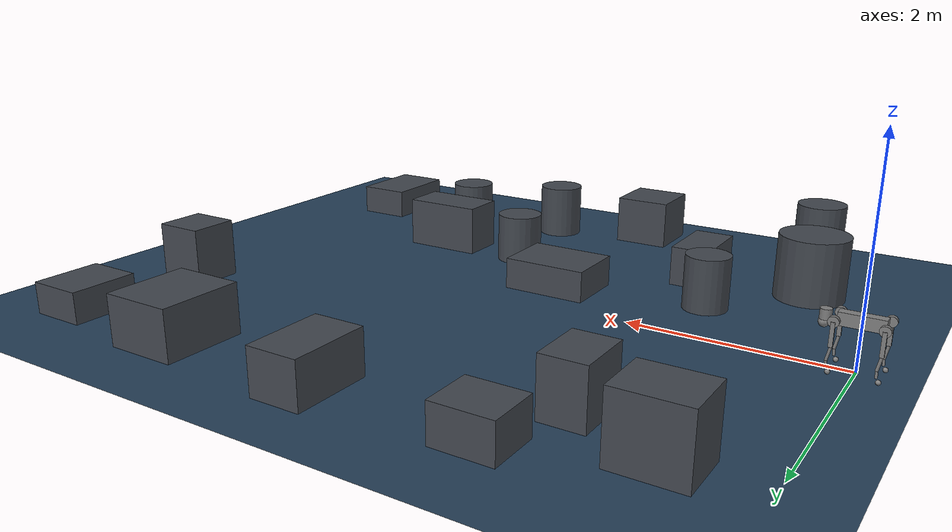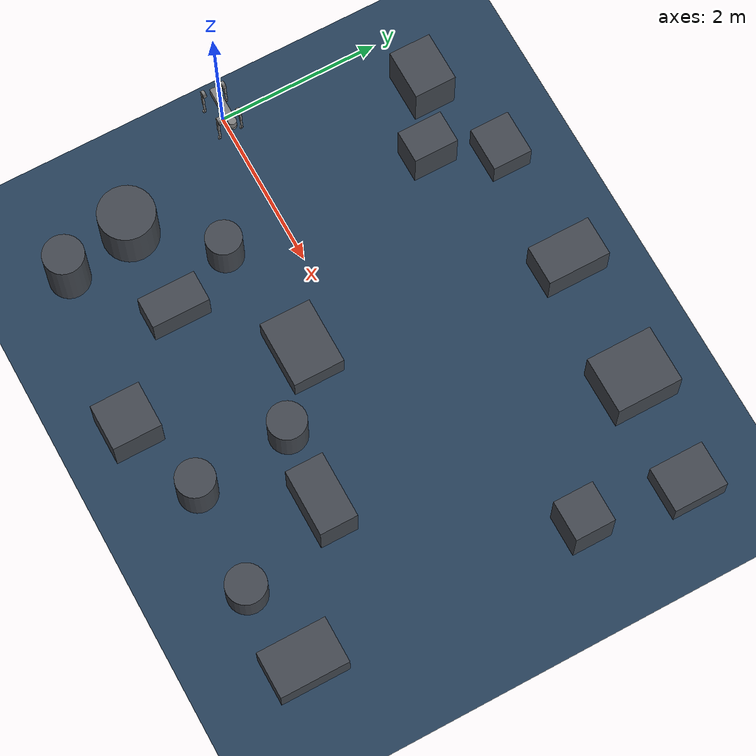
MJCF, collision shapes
<?xml version="1.0" encoding="utf-8"?>
<mujoco model="go2 random_scene_03">
  <include file="go2.xml" />
  <statistic center="3.5 0 0.1" extent="8" />
  <visual>
    <headlight diffuse="0.6 0.6 0.6" ambient="0.3 0.3 0.3" specular="0 0 0" />
    <rgba haze="0.15 0.25 0.35 1" />
    <global azimuth="135" elevation="-40" />
  </visual>
  <asset>
    <texture type="skybox" builtin="gradient" rgb1="0.3 0.5 0.7" rgb2="0 0 0" width="512" height="3072" />
    <texture type="2d" name="random_groundplane" builtin="checker" mark="edge" rgb1="0.2 0.3 0.4" rgb2="0.1 0.2 0.3" markrgb="0.8 0.8 0.8" width="300" height="300" />
    <material name="random_groundplane" texture="random_groundplane" texuniform="true" texrepeat="5 5" reflectance="0.2" />
  </asset>
  <worldbody>
    <light pos="1 0 7" dir="0 0 -1" directional="true" />
    <geom name="floor" type="plane" pos="3.5 0 0" size="4 3.5 0.05" material="random_groundplane" />
    <geom name="ppt_obstacle_01" type="box" pos="4.7186038703247819 -1.2157635495809029 0.25638644557828322" size="0.40873662826793972 0.23099564888182261 0.25638644557828322" rgba="0.26 0.28 0.31 1" />
    <geom name="ppt_obstacle_02" type="box" pos="6.2754648516211002 1.1821176680473919 0.28877446081782515" size="0.24883750824666245 0.24475937644868029 0.28877446081782515" rgba="0.26 0.28 0.31 1" />
    <geom name="ppt_obstacle_03" type="box" pos="5.1040314377954088 2.5119312986771116 0.24365549630491867" size="0.35117017038091336 0.40361823058352003 0.24365549630491867" rgba="0.26 0.28 0.31 1" />
    <geom name="ppt_obstacle_04" type="box" pos="2.9977654780264311 -0.54554181434878268 0.15458320148630927" size="0.41506187430685926 0.3138229826683262 0.15458320148630927" rgba="0.26 0.28 0.31 1" />
    <geom name="ppt_obstacle_05" type="box" pos="0.75929794749283941 2.2299887299506493 0.30270613605001651" size="0.3136932467333462 0.25900713886341709 0.30270613605001651" rgba="0.26 0.28 0.31 1" />
    <geom name="ppt_obstacle_06" type="box" pos="1.882610362636862 -1.5822795751802714 0.19810552471266718" size="0.19391674470340975 0.35592850510246199 0.19810552471266718" rgba="0.26 0.28 0.31 1" />
    <geom name="ppt_obstacle_07" type="box" pos="6.1876183359999617 -2.2302624658981829 0.16057043175227501" size="0.28328355333753824 0.419796125732182 0.16057043175227501" rgba="0.26 0.28 0.31 1" />
    <geom name="ppt_obstacle_08" type="cylinder" pos="5.199238404222573 -2.3991791916722209 0.20765500105310353" size="0.23853929015003311 0.20765500105310353" rgba="0.26 0.28 0.31 1" />
    <geom name="ppt_obstacle_09" type="box" pos="6.4211522926890394 2.4440643603627348 0.15520415204891633" size="0.27871927470160962 0.33150159831449288 0.15520415204891633" rgba="0.26 0.28 0.31 1" />
    <geom name="ppt_obstacle_10" type="box" pos="2.8971536419856507 -2.6796711142064464 0.25117223020621543" size="0.28581946111819212 0.29881054239077548 0.25117223020621543" rgba="0.26 0.28 0.31 1" />
    <geom name="ppt_obstacle_11" type="box" pos="3.5068843785487389 2.6014151394566754 0.217952895489712" size="0.24753860502029057 0.38932360118698384 0.217952895489712" rgba="0.26 0.28 0.31 1" />
    <geom name="ppt_obstacle_12" type="cylinder" pos="0.9424691695746128 -2.4553628598986688 0.36557709222094276" size="0.24477434486246155 0.36557709222094276" rgba="0.26 0.28 0.31 1" />
    <geom name="ppt_obstacle_13" type="cylinder" pos="3.9180064539824135 -2.3448431006313437 0.2802827222363824" size="0.23274565720115048 0.2802827222363824" rgba="0.26 0.28 0.31 1" />
    <geom name="ppt_obstacle_14" type="cylinder" pos="3.7945991628880904 -1.1499347686265715 0.25242160189083551" size="0.23088313631971363 0.25242160189083551" rgba="0.26 0.28 0.31 1" />
    <geom name="ppt_obstacle_15" type="box" pos="1.9212634736641006 2.6230589951450134 0.17618212921275622" size="0.27901844020107164 0.24485012522792157 0.17618212921275622" rgba="0.26 0.28 0.31 1" />
    <geom name="ppt_obstacle_16" type="cylinder" pos="0.78709468474664035 -1.6000779841072328 0.31932347774781267" size="0.3393790402051089 0.31932347774781267" rgba="0.26 0.28 0.31 1" />
    <geom name="ppt_obstacle_17" type="cylinder" pos="1.5368525277272391 -0.76108640562378516 0.26698049692671433" size="0.21670324477666036 0.26698049692671433" rgba="0.26 0.28 0.31 1" />
    <geom name="ppt_obstacle_18" type="box" pos="1.5494254370466092 1.8639642017743907 0.26950297975201865" size="0.20556225419175184 0.27586899555181849 0.26950297975201865" rgba="0.26 0.28 0.31 1" />
  </worldbody>
</mujoco>

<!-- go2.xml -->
<mujoco model="go2">
  <compiler angle="radian" meshdir="assets" autolimits="true" />

  <option cone="elliptic" impratio="100" />

  <default>
    <default class="go2">
      <geom friction="0.4" margin="0.001" condim="1"/>
      <joint axis="0 1 0" damping="0.1" armature="0.01" frictionloss="0.2"/>
      <motor ctrlrange="-23.7 23.7"/>
      <default class="abduction">
        <joint axis="1 0 0" range="-1.0472 1.0472"/>
      </default>
      <default class="hip">
        <default class="front_hip">
          <joint range="-1.5708 3.4907"/>
        </default>
        <default class="back_hip">
          <joint range="-0.5236 4.5379"/>
        </default>
      </default>
      <default class="knee">
        <joint range="-2.7227 -0.83776"/>
        <motor ctrlrange="-45.43 45.43"/>
      </default>
      <default class="visual">
        <geom type="mesh" contype="0" conaffinity="0" group="2"/>
      </default>
      <default class="collision">
        <geom group="3"/>
        <default class="foot">
          <geom size="0.022" pos="-0.002 0 -0.213" priority="1" condim="6"
            friction="0.4 0.02 0.01"/>
        </default>
      </default>
    </default>
  </default>

  <asset>
    <material name="metal" rgba=".9 .95 .95 1" />
    <material name="black" rgba="0 0 0 1" />
    <material name="white" rgba="1 1 1 1" />
    <material name="gray" rgba="0.671705 0.692426 0.774270 1" />
    <material name="transparent" rgba="1 1 1 0.01" />

    <mesh file="base_0.obj" />
    <mesh file="base_1.obj" />
    <mesh file="base_2.obj" />
    <mesh file="base_3.obj" />
    <mesh file="base_4.obj" />
    <mesh file="hip_0.obj" />
    <mesh file="hip_1.obj" />
    <mesh file="thigh_0.obj" />
    <mesh file="thigh_1.obj" />
    <mesh file="thigh_mirror_0.obj" />
    <mesh file="thigh_mirror_1.obj" />
    <mesh file="calf_0.obj" />
    <mesh file="calf_1.obj" />
    <mesh file="calf_mirror_0.obj" />
    <mesh file="calf_mirror_1.obj" />
    <mesh file="foot.obj" />
  </asset>

  <worldbody>
    <body name="base_link" pos="0 0 0.445" childclass="go2">
      <inertial pos="0.021112 0 -0.005366" quat="-0.000543471 0.713435 -0.00173769 0.700719"
        mass="6.921"
        diaginertia="0.107027 0.0980771 0.0244531" />
      <freejoint />
      <geom mesh="base_0" material="black" class="visual" />
      <geom mesh="base_1" material="black" class="visual" />
      <geom mesh="base_2" material="black" class="visual" />
      <geom mesh="base_3" material="white" class="visual" />
      <geom mesh="base_4" material="gray" class="visual" />
      <geom size="0.1881 0.04675 0.057" type="box" class="collision" />
      <geom size="0.05 0.045" pos="0.285 0 0.01" type="cylinder" class="collision" />
      <geom size="0.047" pos="0.293 0 -0.06" class="collision" />
      <site name="imu" pos="-0.02557 0 0.04232" />
      <body name="FL_hip" pos="0.1934 0.0465 0">
        <inertial pos="-0.0054 0.00194 -0.000105" quat="0.497014 0.499245 0.505462 0.498237"
          mass="0.678"
          diaginertia="0.00088403 0.000596003 0.000479967" />
        <joint name="FL_hip_joint" class="abduction" />
        <geom mesh="hip_0" material="metal" class="visual" />
        <geom mesh="hip_1" material="gray" class="visual" />
        <geom size="0.046 0.02" pos="0 0.08 0" quat="1 1 0 0" type="cylinder" class="collision" />
        <body name="FL_thigh" pos="0 0.0955 0">
          <inertial pos="-0.00374 -0.0223 -0.0327" quat="0.829533 0.0847635 -0.0200632 0.551623"
            mass="1.152"
            diaginertia="0.00594973 0.00584149 0.000878787" />
          <joint name="FL_thigh_joint" class="front_hip" />
          <geom mesh="thigh_0" material="metal" class="visual" />
          <geom mesh="thigh_1" material="gray" class="visual" />
          <geom size="0.1065 0.01225 0.017" pos="0 0 -0.1065" quat="0.707107 0 0.707107 0"
            type="box" class="collision" />
          <body name="FL_calf" pos="0 0 -0.213">
            <inertial pos="0.00629595 -0.000622121 -0.141417"
              quat="0.710672 0.00154099 -0.00450087 0.703508"
              mass="0.241352" diaginertia="0.0014901 0.00146356 5.31397e-05" />
            <joint name="FL_calf_joint" class="knee" />
            <geom mesh="calf_0" material="gray" class="visual" />
            <geom mesh="calf_1" material="black" class="visual" />
            <geom size="0.012 0.06" pos="0.008 0 -0.06" quat="0.994493 0 -0.104807 0"
              type="cylinder" class="collision" />
            <geom size="0.011 0.0325" pos="0.02 0 -0.148" quat="0.999688 0 0.0249974 0"
              type="cylinder" class="collision" />
            <geom pos="0 0 -0.213" mesh="foot" class="visual" material="black" />
            <geom name="FL" class="foot" />
            <site name="FL_touch" pos="0 0 -0.213" size="0.027" material="transparent"/>
            <body name="FL_foot" pos="0 0 -0.213"/>
          </body>
        </body>
      </body>
      <body name="FR_hip" pos="0.1934 -0.0465 0">
        <inertial pos="-0.0054 -0.00194 -0.000105" quat="0.498237 0.505462 0.499245 0.497014"
          mass="0.678"
          diaginertia="0.00088403 0.000596003 0.000479967" />
        <joint name="FR_hip_joint" class="abduction" />
        <geom mesh="hip_0" material="metal" class="visual" quat="4.63268e-05 1 0 0" />
        <geom mesh="hip_1" material="gray" class="visual" quat="4.63268e-05 1 0 0" />
        <geom size="0.046 0.02" pos="0 -0.08 0" quat="0.707107 0.707107 0 0" type="cylinder"
          class="collision" />
        <body name="FR_thigh" pos="0 -0.0955 0">
          <inertial pos="-0.00374 0.0223 -0.0327" quat="0.551623 -0.0200632 0.0847635 0.829533"
            mass="1.152"
            diaginertia="0.00594973 0.00584149 0.000878787" />
          <joint name="FR_thigh_joint" class="front_hip" />
          <geom mesh="thigh_mirror_0" material="metal" class="visual" />
          <geom mesh="thigh_mirror_1" material="gray" class="visual" />
          <geom size="0.1065 0.01225 0.017" pos="0 0 -0.1065" quat="0.707107 0 0.707107 0"
            type="box" class="collision" />
          <body name="FR_calf" pos="0 0 -0.213">
            <inertial pos="0.00629595 0.000622121 -0.141417"
              quat="0.703508 -0.00450087 0.00154099 0.710672"
              mass="0.241352" diaginertia="0.0014901 0.00146356 5.31397e-05" />
            <joint name="FR_calf_joint" class="knee" />
            <geom mesh="calf_mirror_0" material="gray" class="visual" />
            <geom mesh="calf_mirror_1" material="black" class="visual" />
            <geom size="0.013 0.06" pos="0.01 0 -0.06" quat="0.995004 0 -0.0998334 0"
              type="cylinder" class="collision" />
            <geom size="0.011 0.0325" pos="0.02 0 -0.148" quat="0.999688 0 0.0249974 0"
              type="cylinder" class="collision" />
            <geom pos="0 0 -0.213" mesh="foot" class="visual" material="black" />
            <geom name="FR" class="foot" />
            <site name="FR_touch" pos="0 0 -0.213" size="0.027" material="transparent"/>
            <body name="FR_foot" pos="0 0 -0.213"/>
          </body>
        </body>
      </body>
      <body name="RL_hip" pos="-0.1934 0.0465 0">
        <inertial pos="0.0054 0.00194 -0.000105" quat="0.505462 0.498237 0.497014 0.499245"
          mass="0.678"
          diaginertia="0.00088403 0.000596003 0.000479967" />
        <joint name="RL_hip_joint" class="abduction" />
        <geom mesh="hip_0" material="metal" class="visual" quat="4.63268e-05 0 1 0" />
        <geom mesh="hip_1" material="gray" class="visual" quat="4.63268e-05 0 1 0" />
        <geom size="0.046 0.02" pos="0 0.08 0" quat="0.707107 0.707107 0 0" type="cylinder"
          class="collision" />
        <body name="RL_thigh" pos="0 0.0955 0">
          <inertial pos="-0.00374 -0.0223 -0.0327" quat="0.829533 0.0847635 -0.0200632 0.551623"
            mass="1.152"
            diaginertia="0.00594973 0.00584149 0.000878787" />
          <joint name="RL_thigh_joint" class="back_hip" />
          <geom mesh="thigh_0" material="metal" class="visual" />
          <geom mesh="thigh_1" material="gray" class="visual" />
          <geom size="0.1065 0.01225 0.017" pos="0 0 -0.1065" quat="0.707107 0 0.707107 0"
            type="box" class="collision" />
          <body name="RL_calf" pos="0 0 -0.213">
            <inertial pos="0.00629595 -0.000622121 -0.141417"
              quat="0.710672 0.00154099 -0.00450087 0.703508"
              mass="0.241352" diaginertia="0.0014901 0.00146356 5.31397e-05" />
            <joint name="RL_calf_joint" class="knee" />
            <geom mesh="calf_0" material="gray" class="visual" />
            <geom mesh="calf_1" material="black" class="visual" />
            <geom size="0.013 0.06" pos="0.01 0 -0.06" quat="0.995004 0 -0.0998334 0"
              type="cylinder" class="collision" />
            <geom size="0.011 0.0325" pos="0.02 0 -0.148" quat="0.999688 0 0.0249974 0"
              type="cylinder" class="collision" />
            <geom pos="0 0 -0.213" mesh="foot" class="visual" material="black" />
            <geom name="RL" class="foot" />
            <site name="RL_touch" pos="0 0 -0.213" size="0.027" material="transparent"/>
            <body name="RL_foot" pos="0 0 -0.213" />
          </body>
        </body>
      </body>
      <body name="RR_hip" pos="-0.1934 -0.0465 0">
        <inertial pos="0.0054 -0.00194 -0.000105" quat="0.499245 0.497014 0.498237 0.505462"
          mass="0.678"
          diaginertia="0.00088403 0.000596003 0.000479967" />
        <joint name="RR_hip_joint" class="abduction" />
        <geom mesh="hip_0" material="metal" class="visual"
          quat="2.14617e-09 4.63268e-05 4.63268e-05 -1" />
        <geom mesh="hip_1" material="gray" class="visual"
          quat="2.14617e-09 4.63268e-05 4.63268e-05 -1" />
        <geom size="0.046 0.02" pos="0 -0.08 0" quat="0.707107 0.707107 0 0" type="cylinder"
          class="collision" />
        <body name="RR_thigh" pos="0 -0.0955 0">
          <inertial pos="-0.00374 0.0223 -0.0327" quat="0.551623 -0.0200632 0.0847635 0.829533"
            mass="1.152"
            diaginertia="0.00594973 0.00584149 0.000878787" />
          <joint name="RR_thigh_joint" class="back_hip" />
          <geom mesh="thigh_mirror_0" material="metal" class="visual" />
          <geom mesh="thigh_mirror_1" material="gray" class="visual" />
          <geom size="0.1065 0.01225 0.017" pos="0 0 -0.1065" quat="0.707107 0 0.707107 0"
            type="box" class="collision" />
          <body name="RR_calf" pos="0 0 -0.213">
            <inertial pos="0.00629595 0.000622121 -0.141417"
              quat="0.703508 -0.00450087 0.00154099 0.710672"
              mass="0.241352" diaginertia="0.0014901 0.00146356 5.31397e-05" />
            <joint name="RR_calf_joint" class="knee" />
            <geom mesh="calf_mirror_0" material="gray" class="visual" />
            <geom mesh="calf_mirror_1" material="black" class="visual" />
            <geom size="0.013 0.06" pos="0.01 0 -0.06" quat="0.995004 0 -0.0998334 0"
              type="cylinder" class="collision" />
            <geom size="0.011 0.0325" pos="0.02 0 -0.148" quat="0.999688 0 0.0249974 0"
              type="cylinder" class="collision" />
            <geom pos="0 0 -0.213" mesh="foot" class="visual" material="black" />
            <geom name="RR" class="foot" />
            <site name="RR_touch" pos="0 0 -0.213" size="0.027" material="transparent"/>
            <body name="RR_foot" pos="0 0 -0.213"/>
          </body>
        </body>
      </body>
    </body>
  </worldbody>

  <actuator>
    <motor class="abduction" name="FR_hip" joint="FR_hip_joint" />
    <motor class="hip" name="FR_thigh" joint="FR_thigh_joint" />
    <motor class="knee" name="FR_calf" joint="FR_calf_joint" />
    <motor class="abduction" name="FL_hip" joint="FL_hip_joint" />
    <motor class="hip" name="FL_thigh" joint="FL_thigh_joint" />
    <motor class="knee" name="FL_calf" joint="FL_calf_joint" />
    <motor class="abduction" name="RR_hip" joint="RR_hip_joint" />
    <motor class="hip" name="RR_thigh" joint="RR_thigh_joint" />
    <motor class="knee" name="RR_calf" joint="RR_calf_joint" />
    <motor class="abduction" name="RL_hip" joint="RL_hip_joint" />
    <motor class="hip" name="RL_thigh" joint="RL_thigh_joint" />
    <motor class="knee" name="RL_calf" joint="RL_calf_joint" />
  </actuator>

  <sensor>
    <jointpos name="FR_hip_pos" joint="FR_hip_joint" />
    <jointpos name="FR_thigh_pos" joint="FR_thigh_joint" />
    <jointpos name="FR_calf_pos" joint="FR_calf_joint" />
    <jointpos name="FL_hip_pos" joint="FL_hip_joint" />
    <jointpos name="FL_thigh_pos" joint="FL_thigh_joint" />
    <jointpos name="FL_calf_pos" joint="FL_calf_joint" />
    <jointpos name="RR_hip_pos" joint="RR_hip_joint" />
    <jointpos name="RR_thigh_pos" joint="RR_thigh_joint" />
    <jointpos name="RR_calf_pos" joint="RR_calf_joint" />
    <jointpos name="RL_hip_pos" joint="RL_hip_joint" />
    <jointpos name="RL_thigh_pos" joint="RL_thigh_joint" />
    <jointpos name="RL_calf_pos" joint="RL_calf_joint" />

    <jointvel name="FR_hip_vel" joint="FR_hip_joint" />
    <jointvel name="FR_thigh_vel" joint="FR_thigh_joint" />
    <jointvel name="FR_calf_vel" joint="FR_calf_joint" />
    <jointvel name="FL_hip_vel" joint="FL_hip_joint" />
    <jointvel name="FL_thigh_vel" joint="FL_thigh_joint" />
    <jointvel name="FL_calf_vel" joint="FL_calf_joint" />
    <jointvel name="RR_hip_vel" joint="RR_hip_joint" />
    <jointvel name="RR_thigh_vel" joint="RR_thigh_joint" />
    <jointvel name="RR_calf_vel" joint="RR_calf_joint" />
    <jointvel name="RL_hip_vel" joint="RL_hip_joint" />
    <jointvel name="RL_thigh_vel" joint="RL_thigh_joint" />
    <jointvel name="RL_calf_vel" joint="RL_calf_joint" />

    <jointactuatorfrc name="FR_hip_torque" joint="FR_hip_joint" noise="0.01" />
    <jointactuatorfrc name="FR_thigh_torque" joint="FR_thigh_joint" noise="0.01" />
    <jointactuatorfrc name="FR_calf_torque" joint="FR_calf_joint" noise="0.01" />
    <jointactuatorfrc name="FL_hip_torque" joint="FL_hip_joint" noise="0.01" />
    <jointactuatorfrc name="FL_thigh_torque" joint="FL_thigh_joint" noise="0.01" />
    <jointactuatorfrc name="FL_calf_torque" joint="FL_calf_joint" noise="0.01" />
    <jointactuatorfrc name="RR_hip_torque" joint="RR_hip_joint" noise="0.01" />
    <jointactuatorfrc name="RR_thigh_torque" joint="RR_thigh_joint" noise="0.01" />
    <jointactuatorfrc name="RR_calf_torque" joint="RR_calf_joint" noise="0.01" />
    <jointactuatorfrc name="RL_hip_torque" joint="RL_hip_joint" noise="0.01" />
    <jointactuatorfrc name="RL_thigh_torque" joint="RL_thigh_joint" noise="0.01" />
    <jointactuatorfrc name="RL_calf_torque" joint="RL_calf_joint" noise="0.01" />

    <framequat name="imu_quat" objtype="site" objname="imu" />
    <gyro name="imu_gyro" site="imu" />
    <accelerometer name="imu_acc" site="imu" />

    <framepos name="frame_pos" objtype="site" objname="imu" />
    <framelinvel name="frame_vel" objtype="site" objname="imu" />

    <touch name="FR_touch" site="FR_touch" />
    <touch name="FL_touch" site="FL_touch" />
    <touch name="RR_touch" site="RR_touch" />
    <touch name="RL_touch" site="RL_touch" />
  </sensor>

  <keyframe>
    <key name="home" qpos="0 0 0.445 1 0 0 0 0 0.8 -1.5 0 0.8 -1.5 0 0.8 -1.5 0 0.8 -1.5"
         ctrl="0 0 0 0 0 0 0 0 0 0 0 0" />
  </keyframe>
</mujoco>
